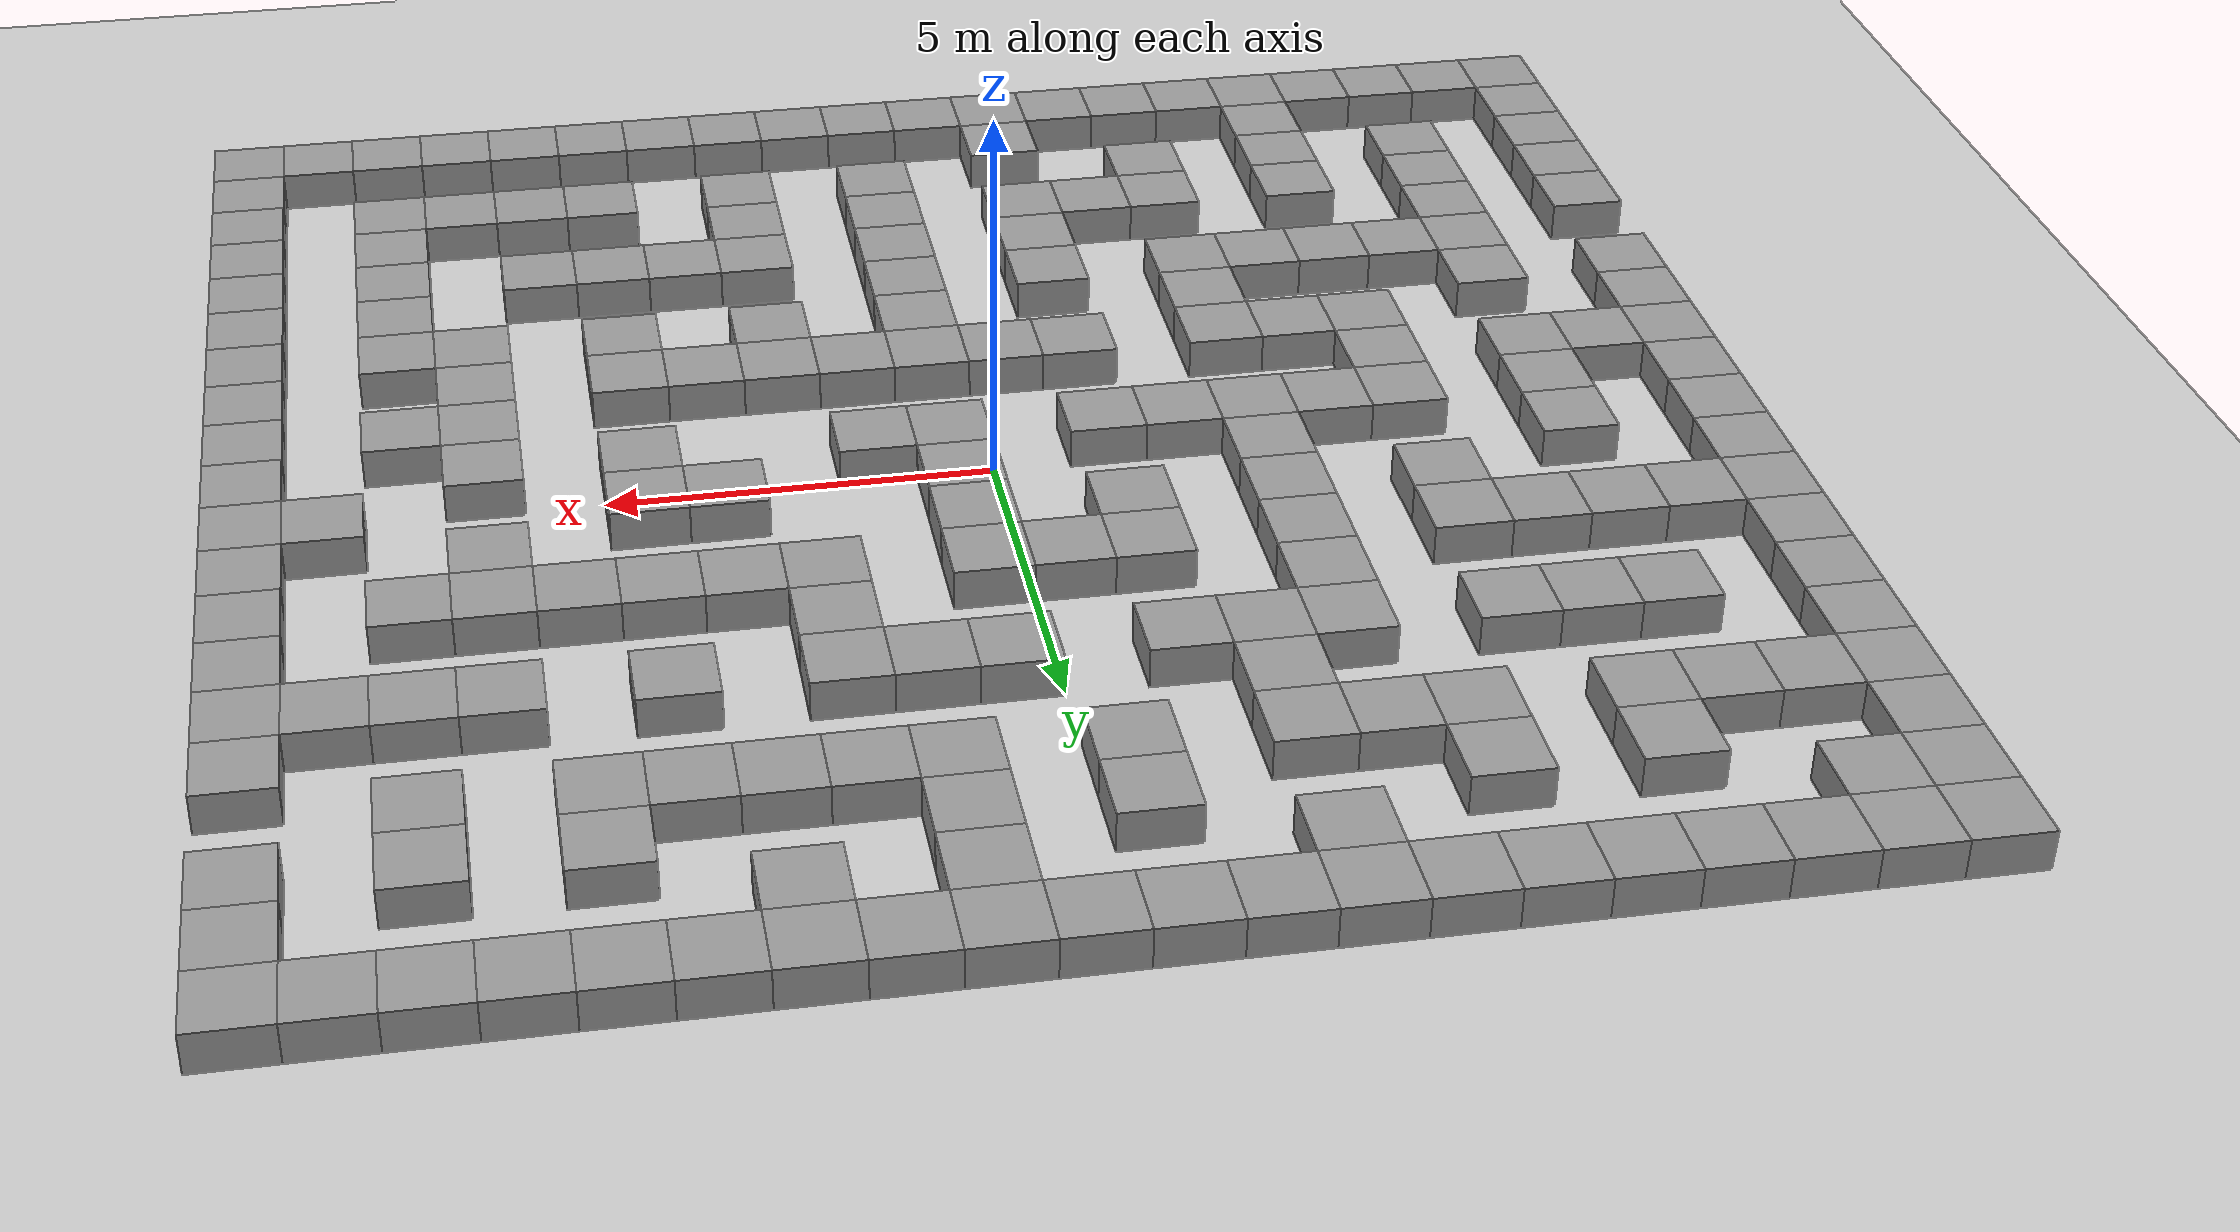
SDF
<sdf version="1.4">
   <world name="default">

     <scene>
       <ambient>0.4 0.4 0.4 1</ambient>
       <background>0.7 0.7 0.7 1</background>
       <shadows>true</shadows>
     </scene>

     <!-- A global light source -->
     <include>
       <uri>model://sun</uri>
     </include>

     <!-- A ground plane -->
     <include>
       <uri>model://ground_plane</uri>
     </include>

     <!-- Maze -->
     <include>
       <uri>model://maze3</uri>
 	     <pose>-0.25 2.125 0 0 0 0</pose>
     </include>

     <physics type="ode">
       <real_time_update_rate>1000.0</real_time_update_rate>
       <max_step_size>0.001</max_step_size>
       <real_time_factor>1</real_time_factor>
       <ode>
         <solver>
           <type>quick</type>
           <iters>150</iters>
           <precon_iters>0</precon_iters>
           <sor>1.400000</sor>
           <use_dynamic_moi_rescaling>1</use_dynamic_moi_rescaling>
         </solver>
         <constraints>
           <cfm>0.00001</cfm>
           <erp>0.2</erp>
           <contact_max_correcting_vel>2000.000000</contact_max_correcting_vel>
           <contact_surface_layer>0.01000</contact_surface_layer>
         </constraints>
       </ode>
     </physics>

   </world>

 </sdf>
